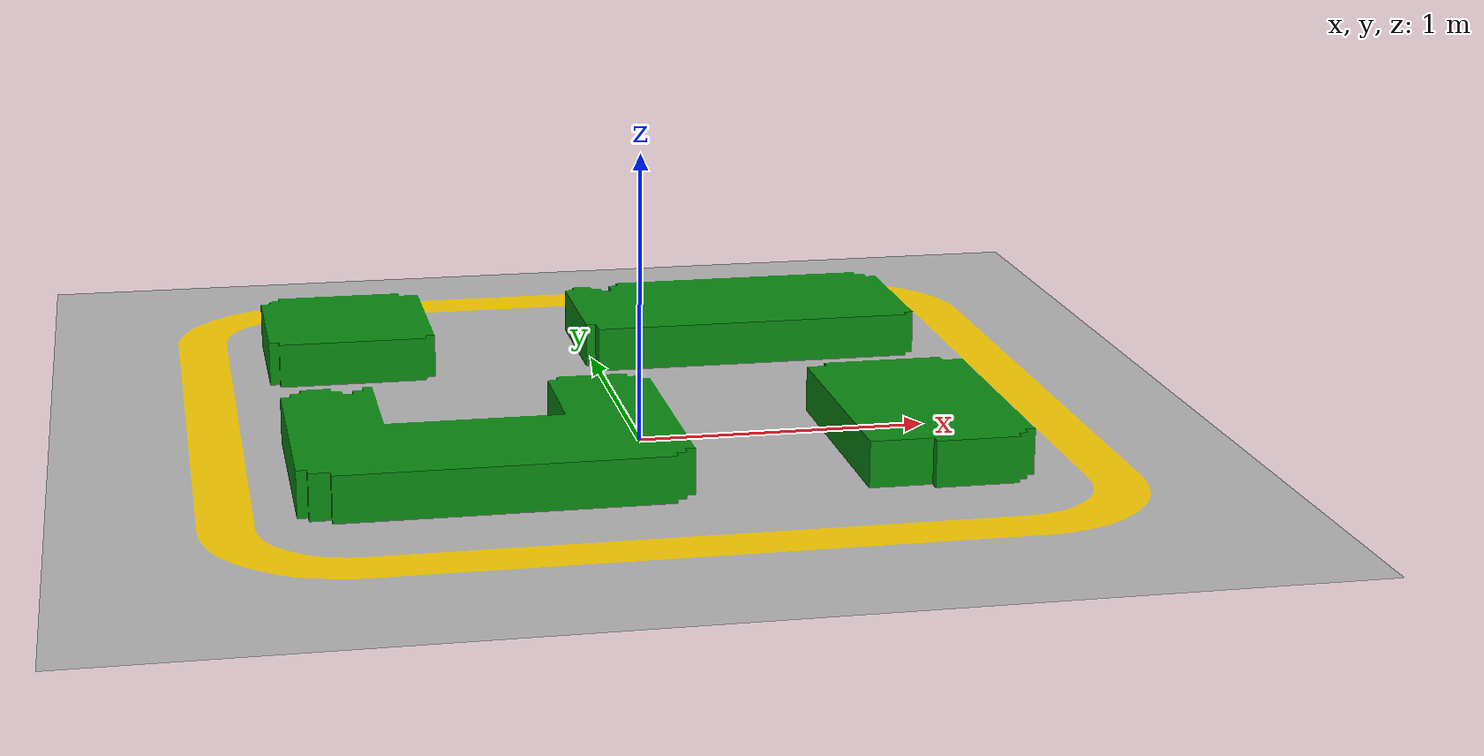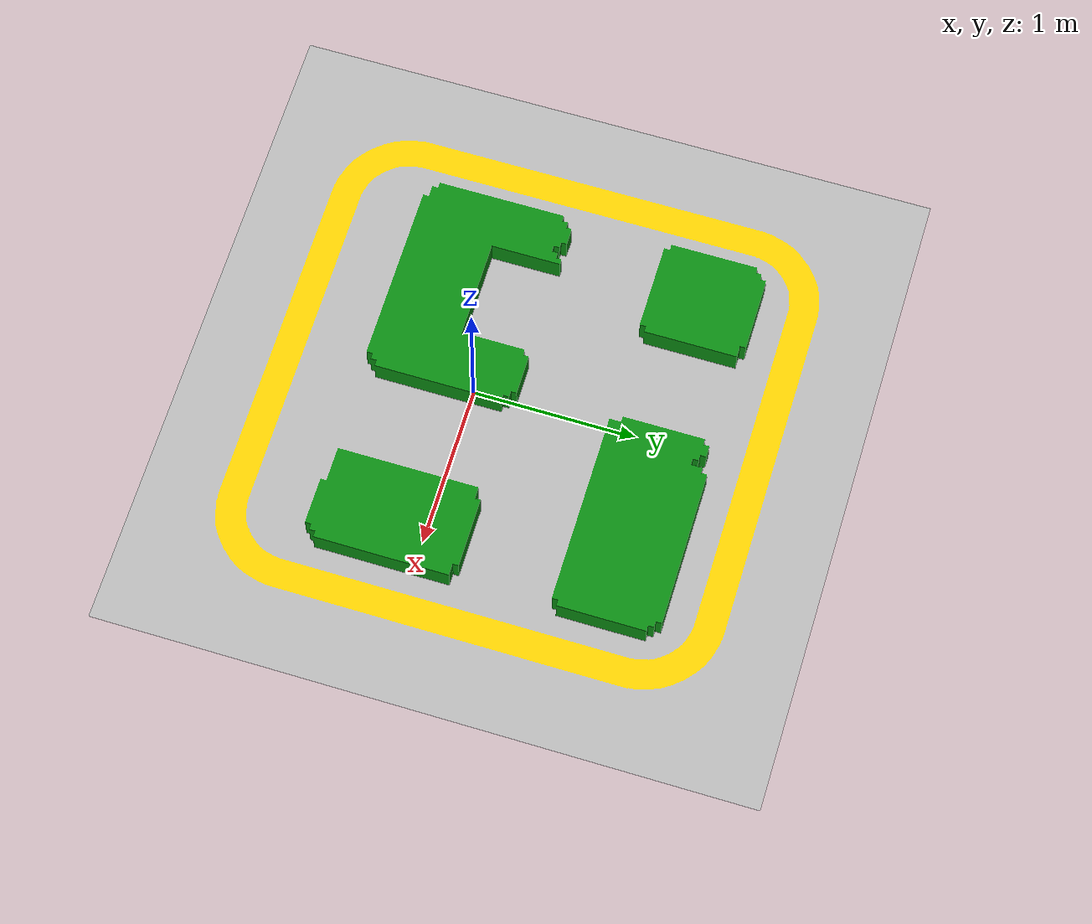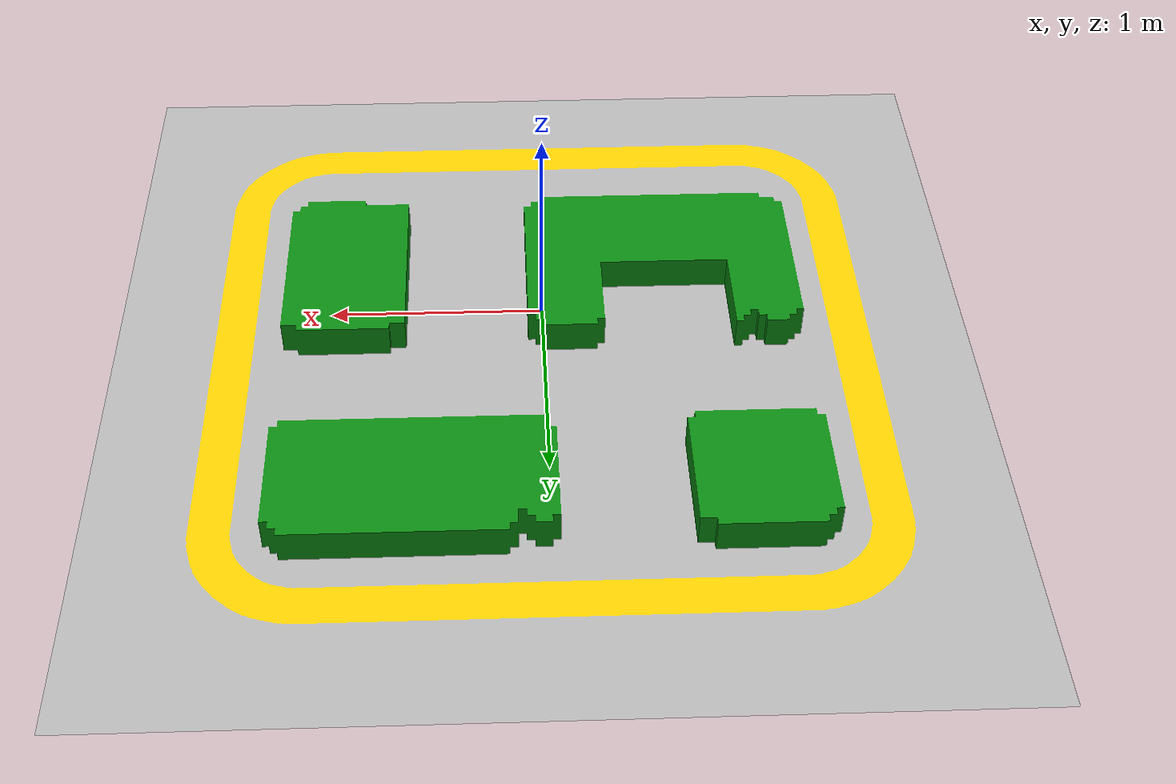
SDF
<?xml version="1.0"?>
<sdf version="1.7">
  <world name="route_drawing_world">
    <plugin name="gazebo_ros_state" filename="libgazebo_ros_state.so">
      <update_rate>30.0</update_rate>
    </plugin>
    <scene>
      <ambient>0.85 0.85 0.85 1</ambient>
      <background>0.86 0.91 0.98 1</background>
      <shadows>0</shadows>
    </scene>
    <gui fullscreen="0">
      <camera name="user_camera">
        <pose>0 0 7.5 0 1.570796 1.570796</pose>
        <view_controller>orbit</view_controller>
      </camera>
    </gui>
    <light name="sun" type="directional">
      <cast_shadows>0</cast_shadows>
      <pose>0 0 8 0 0 0</pose>
      <diffuse>1 1 1 1</diffuse>
      <direction>0 0 -1</direction>
    </light>
    <model name="autonomous_map_3d_mirror_x_view">
      <static>1</static>
      <pose>0.000000 0.300000 0.000000 0 0 0.000000</pose>
      <link name="map_link">
        <visual name="mirrored_map_visual">
          <geometry>
            <mesh>
              <uri>file:///home/quocbao/my_robot_vision_full_project/my_robot_vision/models/autonomous_map_3d/meshes/autonomous_map_3d.dae</uri>
              <scale>-1 1 1</scale>
            </mesh>
          </geometry>
        </visual>
      </link>
    </model>
  </world>
</sdf>
